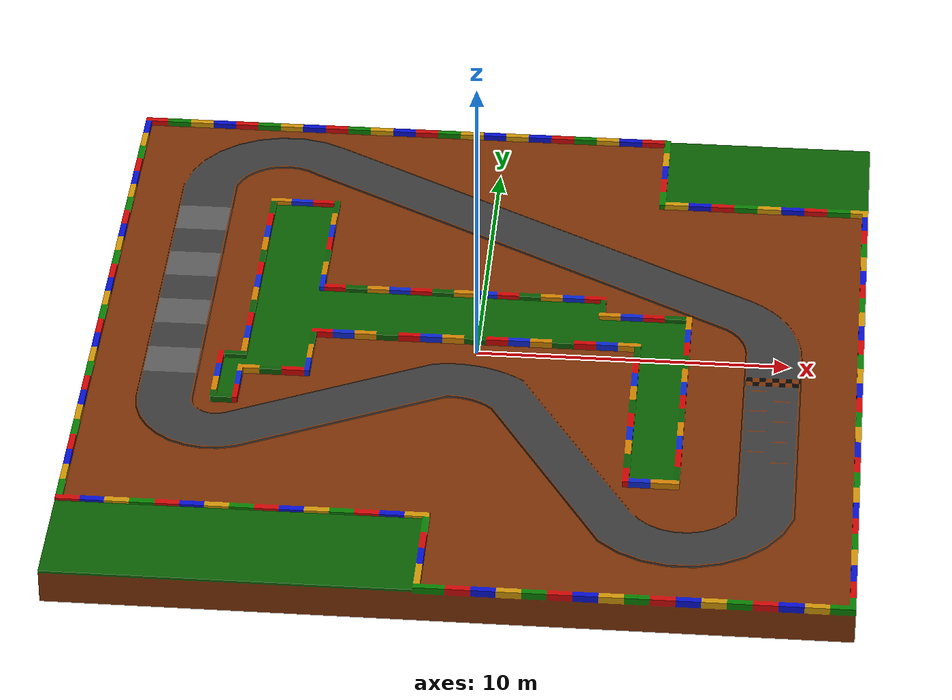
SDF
<?xml version="1.0" ?>
<sdf version='1.4'>
  <model name="circuit">
      <static>1</static>
      <link name='link'>
        <visual name='visual'>
          <geometry>
            <mesh>
              <uri>model://circuit/meshes/circuit.dae</uri>
              <scale>1.0 1.0 1.0</scale>
            </mesh>
          </geometry>
        </visual>

        <collision name='collision'>
          <laser_retro>0</laser_retro>
          <max_contacts>10</max_contacts>
          <pose frame=''>0 0 0 0 -0 0</pose>
          <geometry>
            <mesh>
              <uri>model://circuit/meshes/circuit.stl</uri>
              <scale>1.0 1.0 1.0</scale>
            </mesh>
          </geometry>
       </collision>

        <velocity_decay>
          <linear>0.000000</linear>
          <angular>0.000000</angular>
        </velocity_decay>
        <self_collide>0</self_collide>
        <kinematic>0</kinematic>
        <gravity>1</gravity>
      </link>
  </model>
</sdf>
